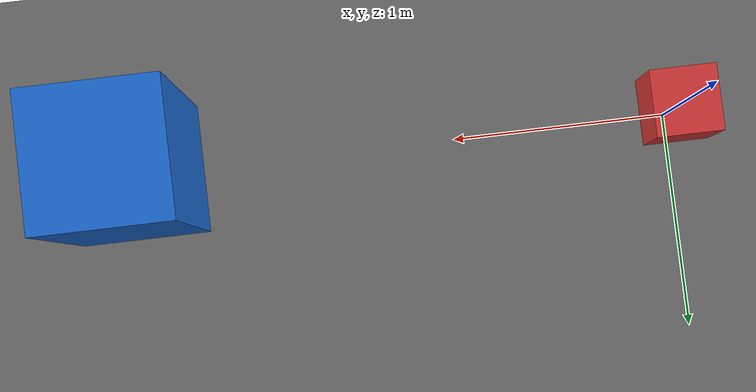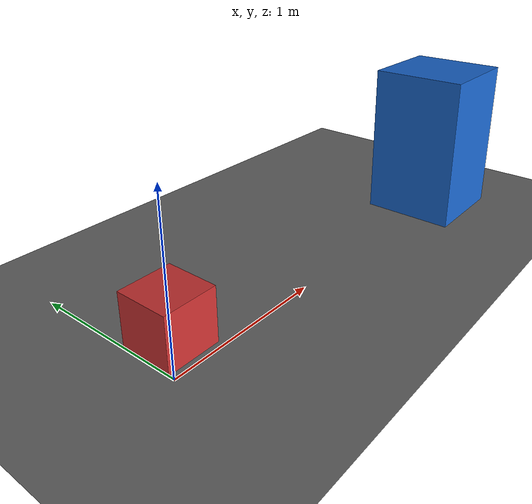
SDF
<?xml version="1.0" ?>
<!--
  Demo world for gz_ros2_bridge_manager.

  Starts a simple sensor rig that publishes Gazebo topics so the bridge manager
  can discover a model with active camera topics immediately after launch.
-->
<sdf version="1.9">
  <world name="bridge_manager_demo">
    <physics name="1ms" type="ignored">
      <max_step_size>0.001</max_step_size>
      <real_time_factor>1.0</real_time_factor>
    </physics>

    <plugin filename="gz-sim-physics-system"
            name="gz::sim::systems::Physics"/>
    <plugin filename="gz-sim-user-commands-system"
            name="gz::sim::systems::UserCommands"/>
    <plugin filename="gz-sim-scene-broadcaster-system"
            name="gz::sim::systems::SceneBroadcaster"/>
    <plugin filename="gz-sim-sensors-system"
            name="gz::sim::systems::Sensors">
      <render_engine>ogre2</render_engine>
    </plugin>

    <light name="sun" type="directional">
      <cast_shadows>true</cast_shadows>
      <pose>0 0 10 0 0 0</pose>
      <diffuse>0.8 0.8 0.8 1</diffuse>
      <specular>0.2 0.2 0.2 1</specular>
      <direction>-0.5 0.1 -0.9</direction>
    </light>

    <model name="ground_plane">
      <static>true</static>
      <link name="link">
        <collision name="collision">
          <geometry>
            <plane>
              <normal>0 0 1</normal>
              <size>100 100</size>
            </plane>
          </geometry>
        </collision>
        <visual name="visual">
          <geometry>
            <plane>
              <normal>0 0 1</normal>
              <size>100 100</size>
            </plane>
          </geometry>
          <material>
            <ambient>0.4 0.4 0.4 1</ambient>
            <diffuse>0.4 0.4 0.4 1</diffuse>
            <specular>0.1 0.1 0.1 1</specular>
          </material>
        </visual>
      </link>
    </model>

    <model name="camera_target">
      <static>true</static>
      <pose>2.5 0 0.5 0 0 0</pose>
      <link name="link">
        <visual name="visual">
          <geometry>
            <box>
              <size>0.6 0.6 1.0</size>
            </box>
          </geometry>
          <material>
            <ambient>0.1 0.4 0.8 1</ambient>
            <diffuse>0.1 0.4 0.8 1</diffuse>
          </material>
        </visual>
        <collision name="collision">
          <geometry>
            <box>
              <size>0.6 0.6 1.0</size>
            </box>
          </geometry>
        </collision>
      </link>
    </model>

    <model name="sensor_rig">
      <static>true</static>
      <pose>0 0 0.35 0 0 0</pose>

      <link name="base_link">
        <collision name="collision">
          <geometry>
            <box>
              <size>0.3 0.3 0.3</size>
            </box>
          </geometry>
        </collision>

        <visual name="visual">
          <geometry>
            <box>
              <size>0.3 0.3 0.3</size>
            </box>
          </geometry>
          <material>
            <ambient>0.8 0.2 0.2 1</ambient>
            <diffuse>0.8 0.2 0.2 1</diffuse>
          </material>
        </visual>

        <sensor name="camera_sensor" type="camera">
          <always_on>true</always_on>
          <update_rate>15</update_rate>
          <topic>/model/sensor_rig/link/base_link/sensor/camera_sensor</topic>
          <visualize>true</visualize>
          <camera>
            <horizontal_fov>1.047</horizontal_fov>
            <image>
              <width>320</width>
              <height>240</height>
              <format>R8G8B8</format>
            </image>
            <clip>
              <near>0.1</near>
              <far>20</far>
            </clip>
          </camera>
        </sensor>
      </link>
    </model>
  </world>
</sdf>
